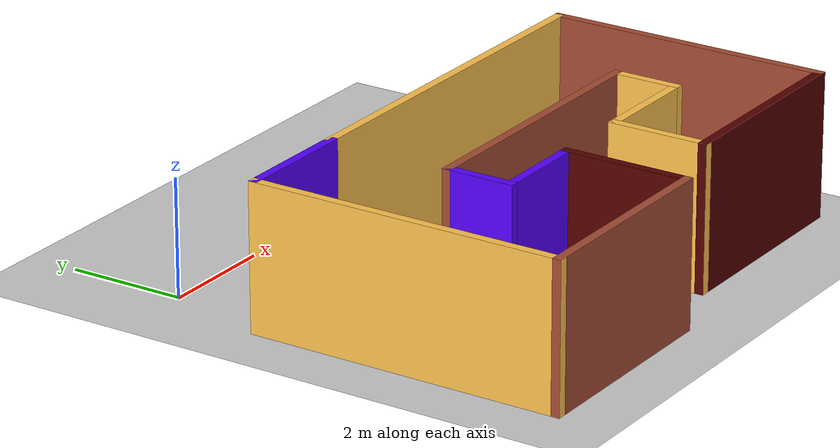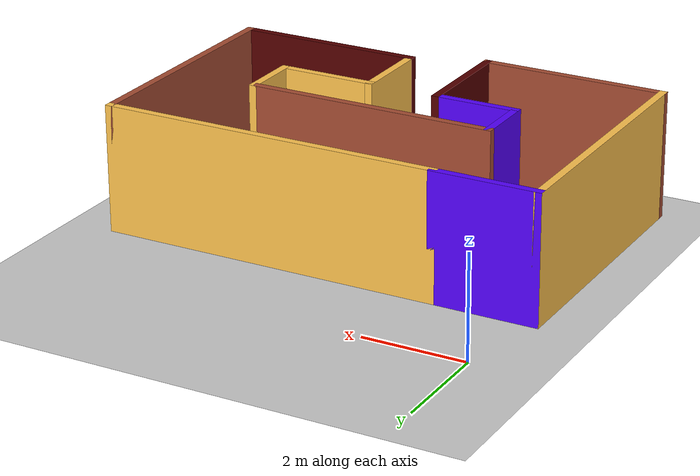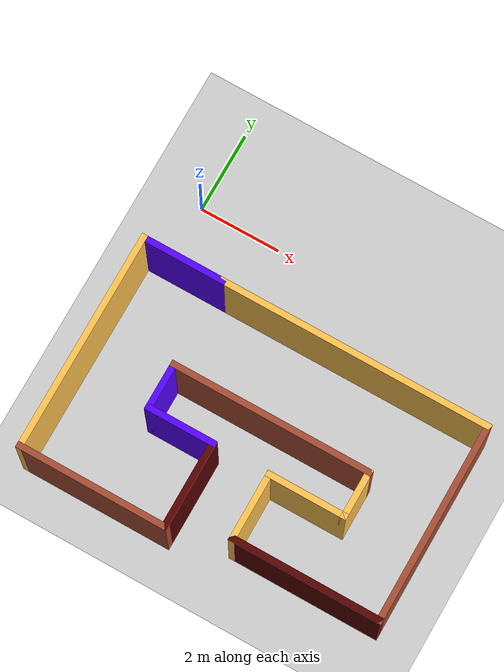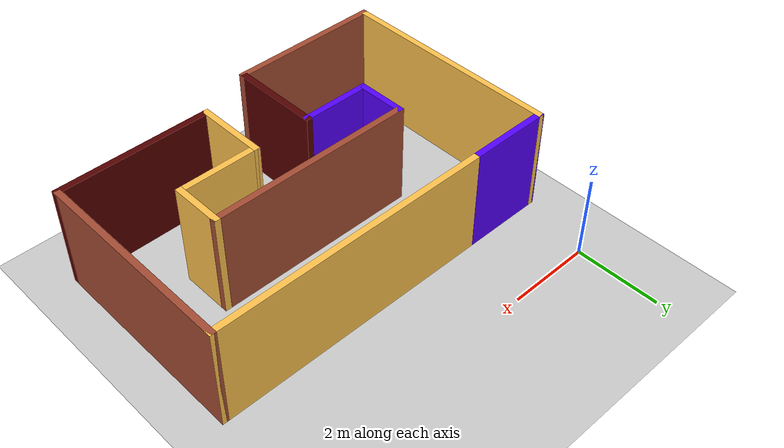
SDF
<sdf version="1.6">
 <world name="default">
  <light name="sun" type="directional">
   <pose>0 0 10 0 -0 0</pose>
   <diffuse>0.8 0.8 0.8 1</diffuse>
   <specular>0.2 0.2 0.2 1</specular>
   <attenuation>
    <range>1000</range>
    <constant>0.9</constant>
    <linear>0.01</linear>
    <quadratic>0.001</quadratic>
   </attenuation>
   <direction>-0.5 0.1 -0.9</direction>
  </light>
  <model name="ground_plane">
   <static>1</static>
   <link name="link">
    <collision name="collision">
     <geometry><plane><normal>0 0 1</normal><size>100 100</size></plane></geometry>
     <surface>
      <contact><collide_bitmask>65535</collide_bitmask></contact>
      <friction><ode><mu>100</mu><mu2>50</mu2></ode></friction>
     </surface>
    </collision>
    <visual name="visual">
     <cast_shadows>0</cast_shadows>
     <geometry><plane><normal>0 0 1</normal><size>100 100</size></plane></geometry>
     <material>
      <script><uri>file://media/materials/scripts/gazebo.material</uri><name>Gazebo/Grey</name></script>
     </material>
    </visual>
   </link>
  </model>
  <gravity>0 0 -9.8</gravity>
  <magnetic_field>6e-06 2.3e-05 -4.2e-05</magnetic_field>
  <atmosphere type="adiabatic"/>
  <physics name="default_physics" default="0" type="ode">
   <max_step_size>0.001</max_step_size>
   <real_time_factor>1</real_time_factor>
   <real_time_update_rate>1000</real_time_update_rate>
  </physics>
  <scene><ambient>0.4 0.4 0.4 1</ambient><background>0.7 0.7 0.7 1</background><shadows>1</shadows></scene>
  <spherical_coordinates>
   <surface_model>EARTH_WGS84</surface_model>
   <latitude_deg>0</latitude_deg>
   <longitude_deg>0</longitude_deg>
   <elevation>0</elevation>
   <heading_deg>0</heading_deg>
  </spherical_coordinates>
  <model name="WeirdWorld">
   <pose>3.88701 -4.45509 0 0 -0 0</pose>
   <link name="Wall_0">
    <collision name="Wall_0_Collision">
     <geometry><box><size>6.75 0.15 2.5</size></box></geometry>
     <pose>0 0 1.25 0 -0 0</pose>
    </collision>
    <visual name="Wall_0_Visual">
     <pose>0 0 1.25 0 -0 0</pose>
     <geometry><box><size>6.75 0.15 2.5</size></box></geometry>
     <material>
      <script><uri>file://media/materials/scripts/gazebo.material</uri><name>Gazebo/Grey</name></script>
      <ambient>1 0.764706 0.305882 1</ambient>
     </material>
     <meta><layer>0</layer></meta>
    </visual>
    <pose>1 2.675 0 0 -0 0</pose>
   </link>
   <link name="Wall_1">
    <collision name="Wall_1_Collision">
     <geometry><box><size>5 0.15 2.5</size></box></geometry>
     <pose>0 0 1.25 0 -0 0</pose>
    </collision>
    <visual name="Wall_1_Visual">
     <pose>0 0 1.25 0 -0 0</pose>
     <geometry><box><size>5 0.15 2.5</size></box></geometry>
     <material>
      <script><uri>file://media/materials/scripts/gazebo.material</uri><name>Gazebo/Bricks</name></script>
      <ambient>1 1 1 1</ambient>
     </material>
     <meta><layer>0</layer></meta>
    </visual>
    <pose>4.3 0.25 0 0 0 -1.5708</pose>
   </link>
   <link name="Wall_10">
    <collision name="Wall_10_Collision">
     <geometry><box><size>3.75 0.15 2.5</size></box></geometry>
     <pose>0 0 1.25 0 -0 0</pose>
    </collision>
    <visual name="Wall_10_Visual">
     <pose>0 0 1.25 0 -0 0</pose>
     <geometry><box><size>3.75 0.15 2.5</size></box></geometry>
     <material>
      <script><uri>file://media/materials/scripts/gazebo.material</uri><name>Gazebo/Bricks</name></script>
      <ambient>1 1 1 1</ambient>
     </material>
     <meta><layer>0</layer></meta>
    </visual>
    <pose>-2.5 -2.675 0 0 -0 3.14159</pose>
   </link>
   <link name="Wall_11">
    <collision name="Wall_11_Collision">
     <geometry><box><size>5.5 0.15 2.5</size></box></geometry>
     <pose>0 0 1.25 0 -0 0</pose>
    </collision>
    <visual name="Wall_11_Visual">
     <pose>0 0 1.25 0 -0 0</pose>
     <geometry><box><size>5.5 0.15 2.5</size></box></geometry>
     <material>
      <script><uri>file://media/materials/scripts/gazebo.material</uri><name>Gazebo/Grey</name></script>
      <ambient>1 0.764706 0.305882 1</ambient>
     </material>
     <meta><layer>0</layer></meta>
    </visual>
    <pose>-4.3 0 0 0 -0 1.5708</pose>
   </link>
   <link name="Wall_13">
    <collision name="Wall_13_Collision">
     <geometry><box><size>2.15 0.15 2.5</size></box></geometry>
     <pose>0 0 1.25 0 -0 0</pose>
    </collision>
    <visual name="Wall_13_Visual">
     <pose>0 0 1.25 0 -0 0</pose>
     <geometry><box><size>2.15 0.15 2.5</size></box></geometry>
     <material>
      <script><uri>file://media/materials/scripts/gazebo.material</uri><name>Gazebo/Grey</name></script>
      <ambient>0.333333 0 1 1</ambient>
     </material>
     <meta><layer>0</layer></meta>
    </visual>
    <pose>-3.3 2.675 0 0 -0 0</pose>
   </link>
   <link name="Wall_2">
    <collision name="Wall_2_Collision">
     <geometry><box><size>3.75 0.15 2.5</size></box></geometry>
     <pose>0 0 1.25 0 -0 0</pose>
    </collision>
    <visual name="Wall_2_Visual">
     <pose>0 0 1.25 0 -0 0</pose>
     <geometry><box><size>3.75 0.15 2.5</size></box></geometry>
     <material>
      <script><uri>file://media/materials/scripts/gazebo.material</uri><name>Gazebo/Grey</name></script>
      <ambient>0.333333 0 0 1</ambient>
     </material>
     <meta><layer>0</layer></meta>
    </visual>
    <pose>2.5 -2.175 0 0 -0 3.14159</pose>
   </link>
   <link name="Wall_3">
    <collision name="Wall_3_Collision">
     <geometry><box><size>1.75 0.15 2.5</size></box></geometry>
     <pose>0 0 1.25 0 -0 0</pose>
    </collision>
    <visual name="Wall_3_Visual">
     <pose>0 0 1.25 0 -0 0</pose>
     <geometry><box><size>1.75 0.15 2.5</size></box></geometry>
     <material>
      <script><uri>file://media/materials/scripts/gazebo.material</uri><name>Gazebo/Grey</name></script>
      <ambient>1 0.764706 0.305882 1</ambient>
     </material>
     <meta><layer>0</layer></meta>
    </visual>
    <pose>0.7 -1.375 0 0 -0 1.5708</pose>
   </link>
   <link name="Wall_4">
    <collision name="Wall_4_Collision">
     <geometry><box><size>2 0.15 2.5</size></box></geometry>
     <pose>0 0 1.25 0 -0 0</pose>
    </collision>
    <visual name="Wall_4_Visual">
     <pose>0 0 1.25 0 -0 0</pose>
     <geometry><box><size>2 0.15 2.5</size></box></geometry>
     <material>
      <script><uri>file://media/materials/scripts/gazebo.material</uri><name>Gazebo/Grey</name></script>
      <ambient>1 0.764706 0.305882 1</ambient>
     </material>
     <meta><layer>0</layer></meta>
    </visual>
    <pose>1.625 -0.575 0 0 -0 0</pose>
   </link>
   <link name="Wall_5">
    <collision name="Wall_5_Collision">
     <geometry><box><size>1.25 0.15 2.5</size></box></geometry>
     <pose>0 0 1.25 0 -0 0</pose>
    </collision>
    <visual name="Wall_5_Visual">
     <pose>0 0 1.25 0 -0 0</pose>
     <geometry><box><size>1.25 0.15 2.5</size></box></geometry>
     <material>
      <script><uri>file://media/materials/scripts/gazebo.material</uri><name>Gazebo/Grey</name></script>
      <ambient>1 0.764706 0.305882 1</ambient>
     </material>
     <meta><layer>0</layer></meta>
    </visual>
    <pose>2.55 -0.025 0 0 -0 1.5708</pose>
   </link>
   <link name="Wall_6">
    <collision name="Wall_6_Collision">
     <geometry><box><size>5 0.15 2.5</size></box></geometry>
     <pose>0 0 1.25 0 -0 0</pose>
    </collision>
    <visual name="Wall_6_Visual">
     <pose>0 0 1.25 0 -0 0</pose>
     <geometry><box><size>5 0.15 2.5</size></box></geometry>
     <material>
      <script><uri>file://media/materials/scripts/gazebo.material</uri><name>Gazebo/Bricks</name></script>
      <ambient>1 1 1 1</ambient>
     </material>
     <meta><layer>0</layer></meta>
    </visual>
    <pose>0.125 0.525 0 0 -0 3.14159</pose>
   </link>
   <link name="Wall_7">
    <collision name="Wall_7_Collision">
     <geometry><box><size>1.25 0.15 2.5</size></box></geometry>
     <pose>0 0 1.25 0 -0 0</pose>
    </collision>
    <visual name="Wall_7_Visual">
     <pose>0 0 1.25 0 -0 0</pose>
     <geometry><box><size>1.25 0.15 2.5</size></box></geometry>
     <material>
      <script><uri>file://media/materials/scripts/gazebo.material</uri><name>Gazebo/Grey</name></script>
      <ambient>0.333333 0 1 1</ambient>
     </material>
     <meta><layer>0</layer></meta>
    </visual>
    <pose>-2.3 -0.025 0 0 0 -1.5708</pose>
   </link>
   <link name="Wall_8">
    <collision name="Wall_8_Collision">
     <geometry><box><size>1.75 0.15 2.5</size></box></geometry>
     <pose>0 0 1.25 0 -0 0</pose>
    </collision>
    <visual name="Wall_8_Visual">
     <pose>0 0 1.25 0 -0 0</pose>
     <geometry><box><size>1.75 0.15 2.5</size></box></geometry>
     <material>
      <script><uri>file://media/materials/scripts/gazebo.material</uri><name>Gazebo/Grey</name></script>
      <ambient>0.333333 0 1 1</ambient>
     </material>
     <meta><layer>0</layer></meta>
    </visual>
    <pose>-1.5 -0.575 0 0 -0 0</pose>
   </link>
   <link name="Wall_9">
    <collision name="Wall_9_Collision">
     <geometry><box><size>2.25 0.15 2.5</size></box></geometry>
     <pose>0 0 1.25 0 -0 0</pose>
    </collision>
    <visual name="Wall_9_Visual">
     <pose>0 0 1.25 0 -0 0</pose>
     <geometry><box><size>2.25 0.15 2.5</size></box></geometry>
     <material>
      <script><uri>file://media/materials/scripts/gazebo.material</uri><name>Gazebo/Grey</name></script>
      <ambient>0.333333 0 0 1</ambient>
     </material>
     <meta><layer>0</layer></meta>
    </visual>
    <pose>-0.7 -1.625 0 0 0 -1.5708</pose>
   </link>
   <static>1</static>
  </model>
 </world>
</sdf>
